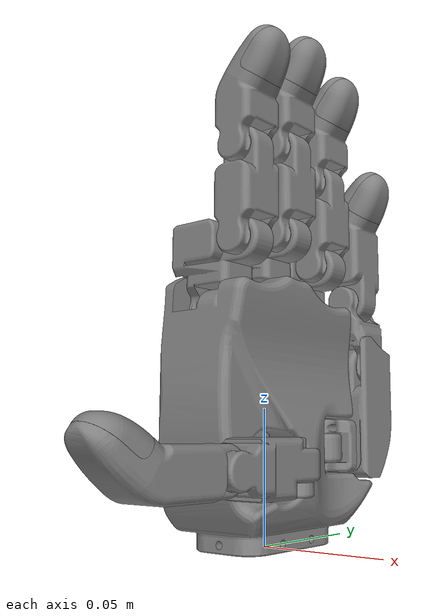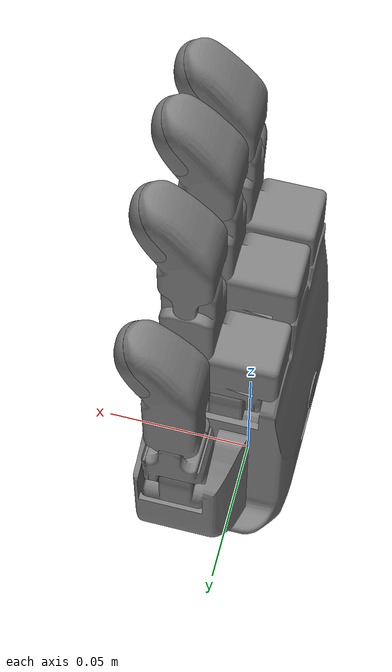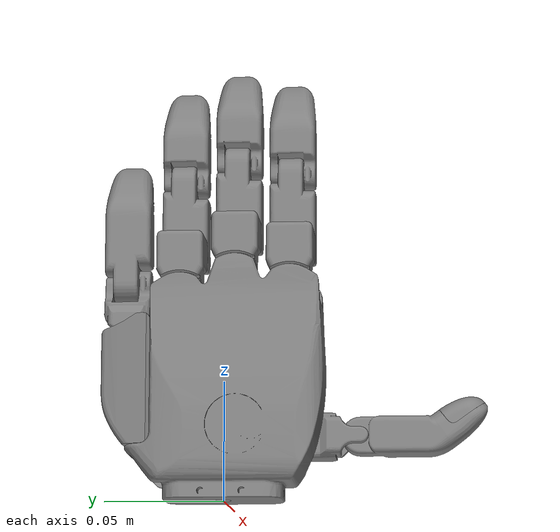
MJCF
<!--
    dg5fs_15dof_left.xml
    Licensed under the BSD-3-Clause
    Copyright (c) 2026 Tesollo Inc.
    See LICENSE file for details.

    Reference:
    * https://tesollo.com/dg-5f/
-->
<mujoco model="dg5fs_left">
  <compiler angle="radian" meshdir="meshes"/>

  <asset>
    <mesh name="link_base" content_type="model/stl" file="dg5fs_15dof_left/link_base.STL"/>
    <mesh name="link_1_1" content_type="model/stl" file="dg5fs_15dof_left/link_1_1.STL"/>
    <mesh name="link_1_2" content_type="model/stl" file="dg5fs_15dof_left/link_1_2.STL"/>
    <mesh name="link_1_3" content_type="model/stl" file="dg5fs_15dof_left/link_1_3.STL"/>
    <mesh name="link_1_tip" content_type="model/stl" file="dg5fs_15dof_left/link_1_tip.STL"/>
    <mesh name="link_2_1" content_type="model/stl" file="dg5fs_15dof_left/link_2_1.STL"/>
    <mesh name="link_2_2" content_type="model/stl" file="dg5fs_15dof_left/link_2_2.STL"/>
    <mesh name="link_2_3" content_type="model/stl" file="dg5fs_15dof_left/link_2_3.STL"/>
    <mesh name="link_2_tip" content_type="model/stl" file="dg5fs_15dof_left/link_2_tip.STL"/>
    <mesh name="link_3_1" content_type="model/stl" file="dg5fs_15dof_left/link_3_1.STL"/>
    <mesh name="link_3_2" content_type="model/stl" file="dg5fs_15dof_left/link_3_2.STL"/>
    <mesh name="link_3_3" content_type="model/stl" file="dg5fs_15dof_left/link_3_3.STL"/>
    <mesh name="link_3_tip" content_type="model/stl" file="dg5fs_15dof_left/link_3_tip.STL"/>
    <mesh name="link_4_1" content_type="model/stl" file="dg5fs_15dof_left/link_4_1.STL"/>
    <mesh name="link_4_2" content_type="model/stl" file="dg5fs_15dof_left/link_4_2.STL"/>
    <mesh name="link_4_3" content_type="model/stl" file="dg5fs_15dof_left/link_4_3.STL"/>
    <mesh name="link_4_tip" content_type="model/stl" file="dg5fs_15dof_left/link_4_tip.STL"/>
    <mesh name="link_5_1" content_type="model/stl" file="dg5fs_15dof_left/link_5_1.STL"/>
    <mesh name="link_5_2" content_type="model/stl" file="dg5fs_15dof_left/link_5_2.STL"/>
    <mesh name="link_5_3" content_type="model/stl" file="dg5fs_15dof_left/link_5_3.STL"/>
    <mesh name="link_5_tip" content_type="model/stl" file="dg5fs_15dof_left/link_5_tip.STL"/>
  </asset>

  <worldbody>
    <geom type="mesh" mesh="link_base"/>
    <body name="link_1_1" pos="0.0017 -0.018 0.0298" quat="0.499998 -0.5 0.500002 -0.5">
      <inertial pos="-2.03296e-09 0.00601222 0.00795349" quat="0.979032 0.203705 0 0" mass="0.0198064" diaginertia="3.17093e-06 2.68441e-06 1.18745e-06"/>
      <joint name="joint_1_1" pos="0 0 0" axis="0 0 1" range="-1.5708 1.5708" actuatorfrcrange="-7.5 7.5"/>
      <geom type="mesh" mesh="link_1_1"/>
      <body name="link_1_2" pos="0 0 0.0262" quat="0.707105 0.707108 0 0">
        <inertial pos="0.01642 0.000294038 0.000325609" quat="-0.0500863 0.721925 -0.00783256 0.690112" mass="0.0280996" diaginertia="4.2812e-06 4.2228e-06 1.40325e-06"/>
        <joint name="joint_1_2" pos="0 0 0" axis="0 0 1" range="0 2.67035" actuatorfrcrange="-7.5 7.5"/>
        <geom type="mesh" mesh="link_1_2"/>
        <body name="link_1_3" pos="0.0381 0 0" quat="0.707105 -0.707108 0 0">
          <inertial pos="0.021048 0.00123832 -0.000236024" quat="0.101984 0.688859 -0.126352 0.706475" mass="0.038764" diaginertia="1.17027e-05 1.00386e-05 3.68939e-06"/>
          <joint name="joint_1_3" pos="0 0 0" axis="0 0 1" range="-1.5708 1.5708" actuatorfrcrange="-7.5 7.5"/>
          <geom type="mesh" mesh="link_1_3"/>
          <geom pos="0.03866 -0.0034211 0" quat="0.951056 0 0 -0.309018" type="mesh" mesh="link_1_tip"/>
        </body>
      </body>
    </body>
    <body name="link_2_1" pos="0.0017 -0.028 0.08365" quat="-2.59734e-06 0.707105 2.59735e-06 0.707108">
      <inertial pos="0.0198782 0.000277092 0.000891767" quat="0.686188 -0.134177 -0.177008 0.692684" mass="0.0330237" diaginertia="4.58833e-06 3.29048e-06 2.90003e-06"/>
      <joint name="joint_2_1" pos="0 0 0" axis="0 0 1" range="-0.261799 0.837758" actuatorfrcrange="-7.5 7.5"/>
      <geom type="mesh" mesh="link_2_1"/>
      <body name="link_2_2" pos="0.02415 0 0.0126" quat="0.707105 -0.707108 0 0">
        <inertial pos="0.0195721 -6.37508e-09 -3.77861e-05" quat="0.463077 0.534377 0.534384 0.463071" mass="0.023482" diaginertia="3.13583e-06 2.92228e-06 1.11694e-06"/>
        <joint name="joint_2_2" pos="0 0 0" axis="0 0 -1" range="0 2.19911" actuatorfrcrange="-7.5 7.5"/>
        <geom type="mesh" mesh="link_2_2"/>
        <body name="link_2_3" pos="0.0334 0 0" quat="-3.67321e-06 1 0 0">
          <inertial pos="0.0186737 0.00163737 0.000327259" quat="0.29372 0.686122 -0.215003 0.629872" mass="0.0252466" diaginertia="5.33244e-06 4.4931e-06 2.36151e-06"/>
          <joint name="joint_2_3" pos="0 0 0" axis="0 0 1" range="-1.5708 1.5708" actuatorfrcrange="-7.5 7.5"/>
          <geom type="mesh" mesh="link_2_3"/>
          <geom pos="0.02776 0.0034211 0" quat="0.951056 0 0 0.309018" type="mesh" mesh="link_2_tip"/>
        </body>
      </body>
    </body>
    <body name="link_3_1" pos="0.0017 -0.005 0.08865" quat="-2.59734e-06 0.707105 2.59735e-06 0.707108">
      <inertial pos="0.0198782 -0.000277092 -0.000891767" quat="0.692684 0.177008 0.134177 0.686188" mass="0.0330237" diaginertia="4.58833e-06 3.29048e-06 2.90003e-06"/>
      <joint name="joint_3_1" pos="0 0 0" axis="0 0 1" range="-0.733038 0.575959" actuatorfrcrange="-7.5 7.5"/>
      <geom type="mesh" mesh="link_3_1"/>
      <body name="link_3_2" pos="0.02415 0 0.0126" quat="0.707105 -0.707108 0 0">
        <inertial pos="0.0195721 -6.37508e-09 -3.77861e-05" quat="0.463077 0.534377 0.534384 0.463071" mass="0.023482" diaginertia="3.13583e-06 2.92228e-06 1.11694e-06"/>
        <joint name="joint_3_2" pos="0 0 0" axis="0 0 -1" range="0 2.26893" actuatorfrcrange="-7.5 7.5"/>
        <geom type="mesh" mesh="link_3_2"/>
        <body name="link_3_3" pos="0.0334 0 0" quat="-3.67321e-06 -1 0 0">
          <inertial pos="0.0186737 0.00363962 -0.000327258" quat="0.122338 0.667746 -0.155271 0.717663" mass="0.0252466" diaginertia="5.0602e-06 3.62682e-06 2.96652e-06"/>
          <joint name="joint_3_3" pos="0 0 0" axis="0 0 1" range="-1.5708 1.5708" actuatorfrcrange="-7.5 7.5"/>
          <geom type="mesh" mesh="link_3_3"/>
          <geom pos="0.02776 0.0034211 0" quat="0.951056 0 0 0.309018" type="mesh" mesh="link_3_tip"/>
        </body>
      </body>
    </body>
    <body name="link_4_1" pos="0.0017 0.018 0.08065" quat="-2.59734e-06 0.707105 2.59735e-06 0.707108">
      <inertial pos="0.0198782 0.000277092 0.000891767" quat="0.686188 -0.134177 -0.177008 0.692684" mass="0.0330237" diaginertia="4.58833e-06 3.29048e-06 2.90003e-06"/>
      <joint name="joint_4_1" pos="0 0 0" axis="0 0 1" range="-0.837758 0.20944" actuatorfrcrange="-7.5 7.5"/>
      <geom type="mesh" mesh="link_4_1"/>
      <body name="link_4_2" pos="0.02415 0 0.0126" quat="0.707105 -0.707108 0 0">
        <inertial pos="0.0195721 -6.37508e-09 -3.77861e-05" quat="0.463077 0.534377 0.534384 0.463071" mass="0.023482" diaginertia="3.13583e-06 2.92228e-06 1.11694e-06"/>
        <joint name="joint_4_2" pos="0 0 0" axis="0 0 -1" range="0 2.21657" actuatorfrcrange="-7.5 7.5"/>
        <geom type="mesh" mesh="link_4_2"/>
        <body name="link_4_3" pos="0.0334 0 0" quat="-3.67321e-06 1 0 0">
          <inertial pos="0.0186737 0.00163737 0.000327259" quat="0.29372 0.686122 -0.215003 0.629872" mass="0.0252466" diaginertia="5.33244e-06 4.4931e-06 2.36151e-06"/>
          <joint name="joint_4_3" pos="0 0 0" axis="0 0 1" range="-1.5708 1.5708" actuatorfrcrange="-7.5 7.5"/>
          <geom type="mesh" mesh="link_4_3"/>
          <geom pos="0.02776 0.0034211 0" quat="0.951056 0 0 0.309018" type="mesh" mesh="link_4_tip"/>
        </body>
      </body>
    </body>
    <body name="link_5_1" pos="0.013 0.01805 0.0364" quat="0.707105 0 0 0.707108">
      <inertial pos="0.0214521 0.00322289 0.010525" quat="0.990385 -0.0583821 0.0768983 0.099074" mass="0.0714341" diaginertia="1.8457e-05 1.67553e-05 8.35395e-06"/>
      <joint name="joint_5_1" pos="0 0 0" axis="0 0 1" range="-1.0472 0" actuatorfrcrange="-7.5 7.5"/>
      <geom type="mesh" mesh="link_5_1"/>
      <body name="link_5_2" pos="0.02445 0 0.0307" quat="0.707105 0.707108 0 0">
        <inertial pos="-0.000569847 0.0136 0.000569857" quat="0.688702 0.600308 -0.160268 0.373677" mass="0.0144988" diaginertia="1.30428e-06 1.26247e-06 8.11064e-07"/>
        <joint name="joint_5_2" pos="0 0 0" axis="0 0 1" range="-1.5708 0.645772" actuatorfrcrange="-7.5 7.5"/>
        <geom type="mesh" mesh="link_5_2"/>
        <body name="link_5_3" pos="0 0.0272 0" quat="0.499998 0.5 0.500002 0.5">
          <inertial pos="0.0214623 0.00164733 -0.000236021" quat="0.121944 0.686332 -0.137349 0.703714" mass="0.038764" diaginertia="1.2429e-05 9.54324e-06 4.91166e-06"/>
          <joint name="joint_5_3" pos="0 0 0" axis="0 0 1" range="-1.5708 1.5708" actuatorfrcrange="-7.5 7.5"/>
          <geom type="mesh" mesh="link_5_3"/>
          <geom pos="0.03866 0.0034211 0" quat="0.951056 0 0 0.309018" type="mesh" mesh="link_5_tip"/>
        </body>
      </body>
    </body>
  </worldbody>
</mujoco>
